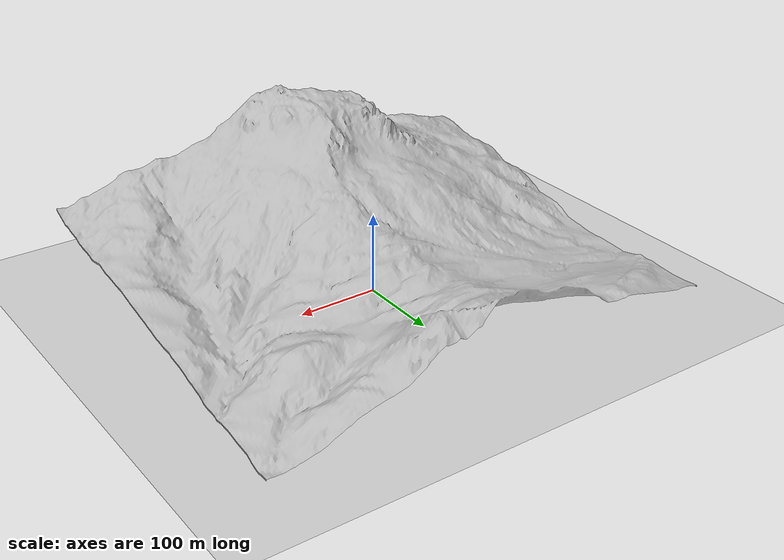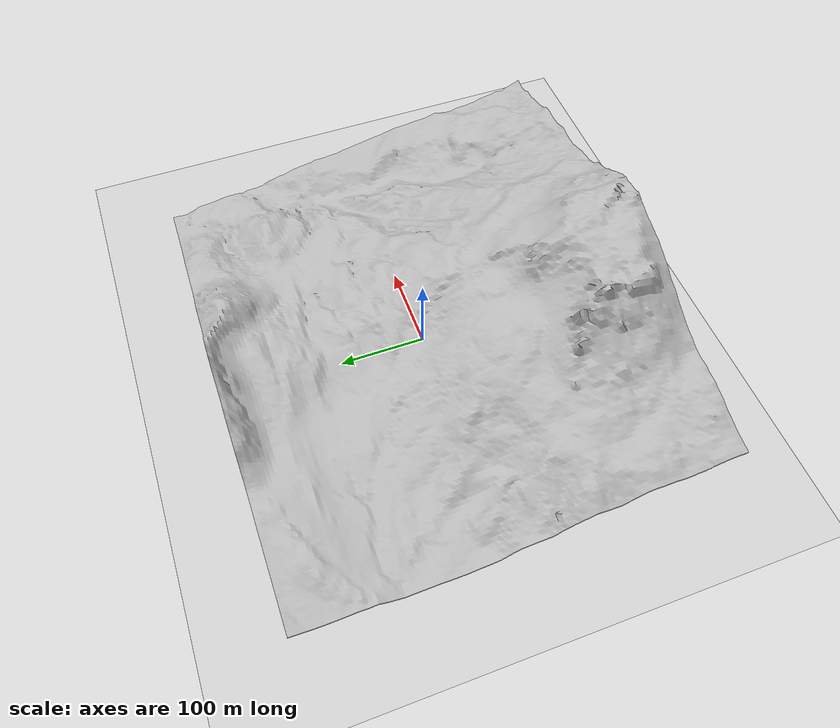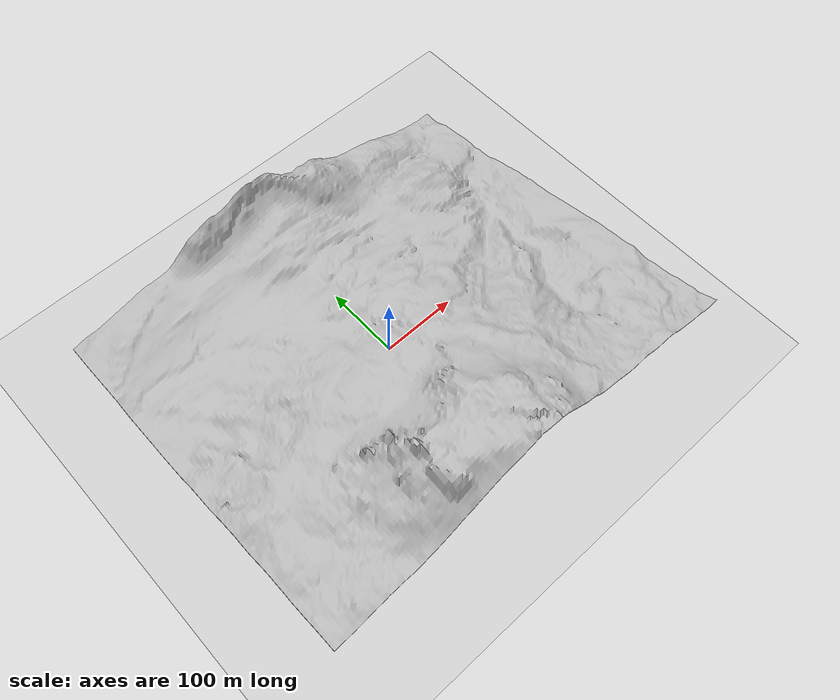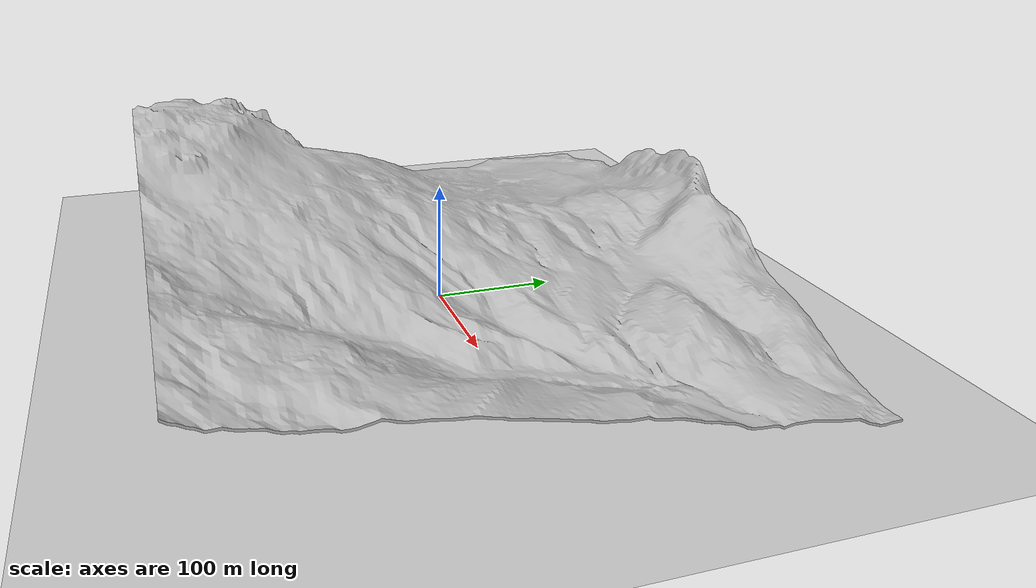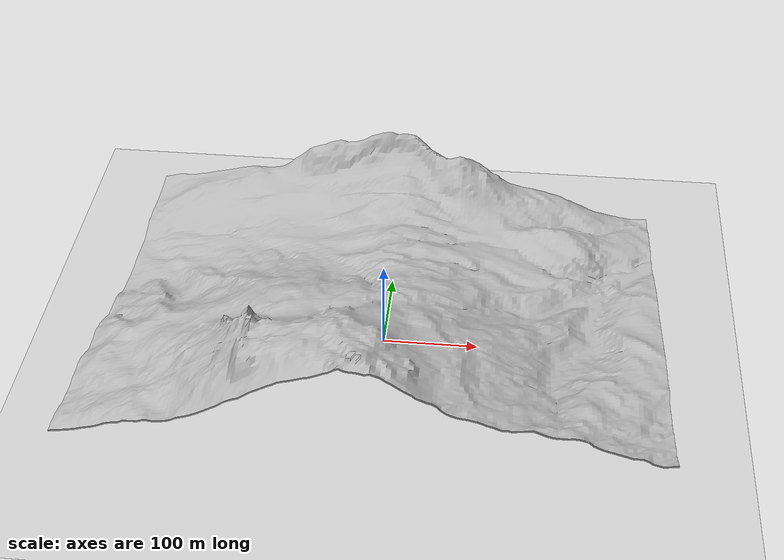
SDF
<?xml version="1.0" ?>
<sdf version="1.5">
  <world name="default">
    <!-- A global light source -->
    <include>
      <uri>model://sun</uri>
    </include>
    <!-- A ground plane -->
    <include>
      <uri>model://ground_plane</uri>
    </include>
    <include>
      <uri>model://Terrain</uri>
    </include>
    <physics name='default_physics' default='0' type='ode'>
      <gravity>0 0 -9.8066</gravity>
      <ode>
        <solver>
          <type>quick</type>
          <iters>10</iters>
          <sor>1.3</sor>
          <use_dynamic_moi_rescaling>0</use_dynamic_moi_rescaling>
        </solver>
        <constraints>
          <cfm>0</cfm>
          <erp>0.2</erp>
          <contact_max_correcting_vel>100</contact_max_correcting_vel>
          <contact_surface_layer>0.001</contact_surface_layer>
        </constraints>
      </ode>
      <max_step_size>0.004</max_step_size>
      <real_time_factor>1</real_time_factor>
      <real_time_update_rate>250</real_time_update_rate>
      <magnetic_field>6.0e-6 2.3e-5 -4.2e-5</magnetic_field>
    </physics>
  </world>
</sdf>

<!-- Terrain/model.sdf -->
<sdf version="1.6">
  <model name="terrain">
    <static>true</static>
    <link name="link">
      <visual name="visual">
      <pose> 0 0 25 0 0 0 </pose>
        <geometry>
          <mesh>
            <uri>model://Terrain/meshes/small.dae</uri>
            <pos>0 0 0</pos>
          </mesh>
        </geometry>
      </visual>

      <collision name="collision">
       <pose> 0 0 92 1.57 0 0</pose>  <!-- 67 metri di differenza di altezza circa-->
       <geometry>
          <mesh>
            <scale>576.35 576.35 576.35</scale>
            <uri>model://Terrain/meshes/small.stl</uri>
          </mesh>
        </geometry>
      </collision>

    </link>
  </model>
</sdf>
